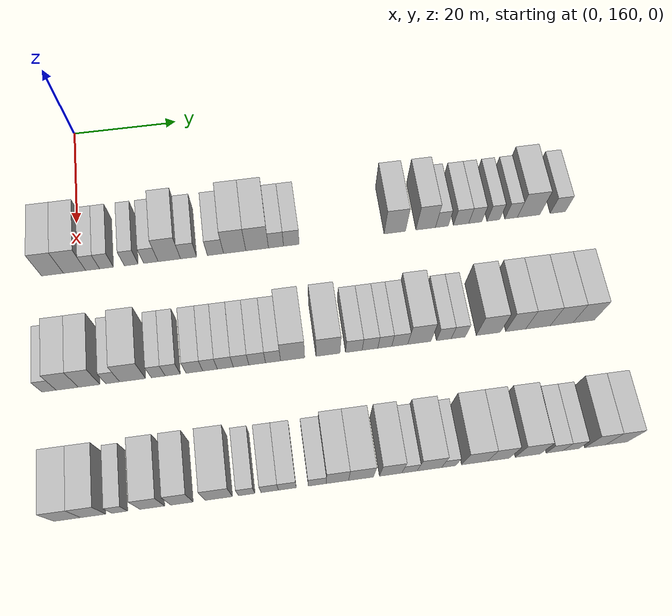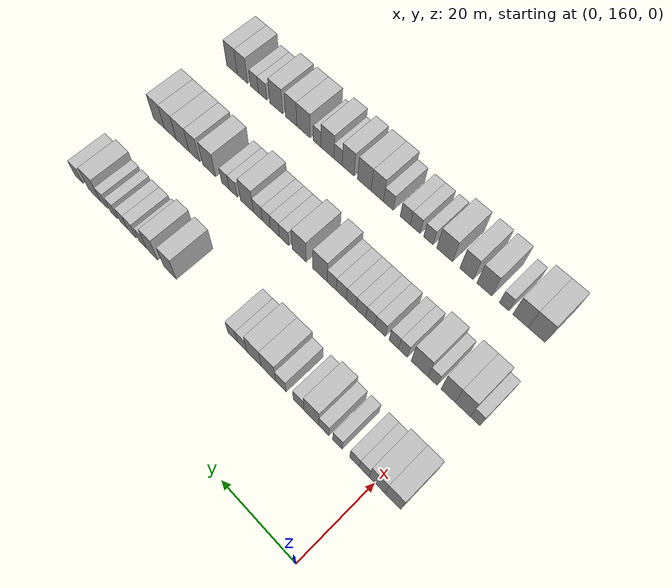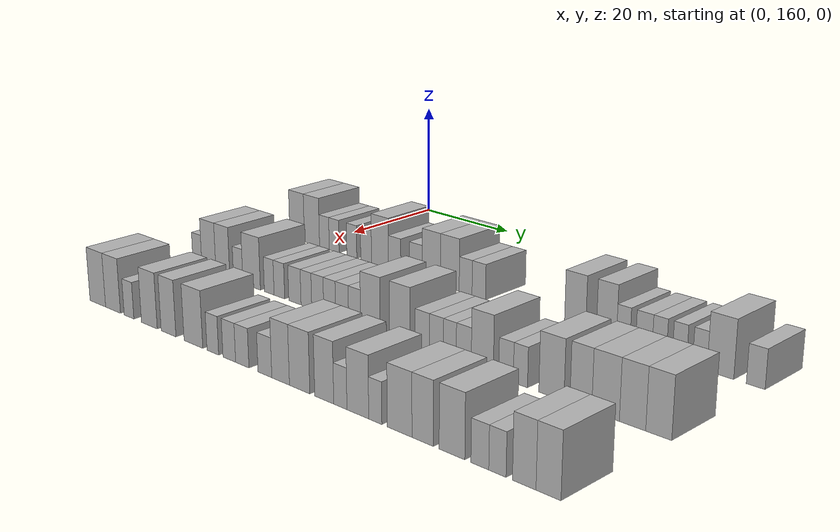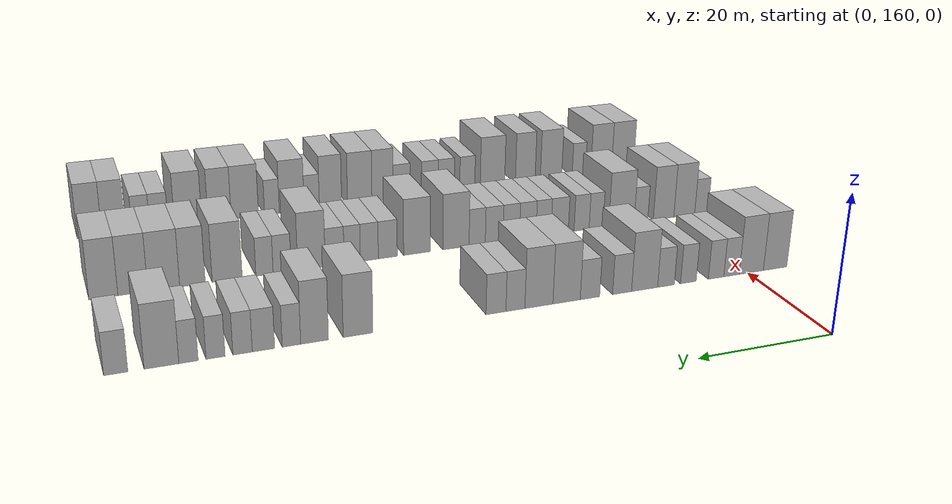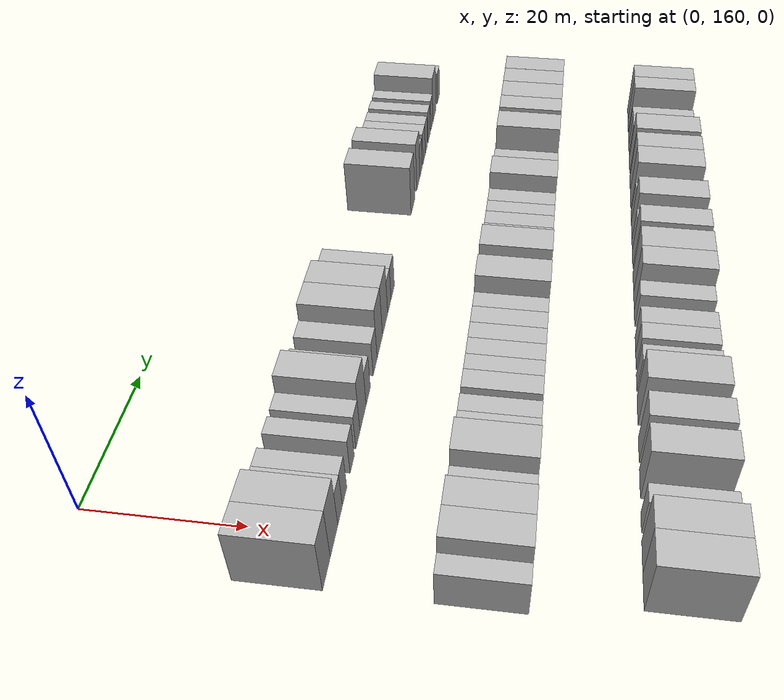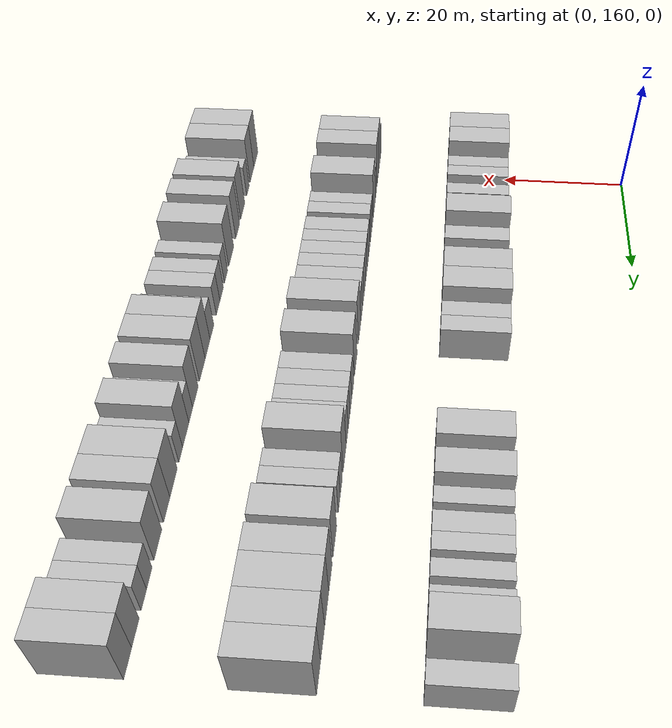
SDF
<sdf version="1.6">
 <world name="default">
  <model name="building_99">
   <static>1</static>
   <pose>25.0000 155.4120 0 0.000000 0.000000 0.000000</pose>
   <link name="link">
    <pose>0 0 4.50 0 0 0</pose>
    <collision name="collision"><geometry><box><size>10.0000 3.9888 9.0000</size></box></geometry></collision>
    <visual name="visual">
     <cast_shadows>0</cast_shadows>
     <geometry><box><size>10.0000 3.9888 9.0000</size></box></geometry>
     <material>
      <script>
       <uri>model://HANNAS_wall/materials/scripts</uri>
       <uri>model://HANNAS_wall/materials/textures</uri>
       <name>vrc/HANNAS_wall</name>
      </script>
     </material>
    </visual>
   </link>
  </model>
  <model name="building_100">
   <static>1</static>
   <pose>25.0000 159.4350 0 0.000000 0.000000 0.000000</pose>
   <link name="link">
    <pose>0 0 4.50 0 0 0</pose>
    <collision name="collision"><geometry><box><size>10.0000 4.0571 9.0000</size></box></geometry></collision>
    <visual name="visual">
     <cast_shadows>0</cast_shadows>
     <geometry><box><size>10.0000 4.0571 9.0000</size></box></geometry>
     <material>
      <script>
       <uri>model://HANNAS_wall/materials/scripts</uri>
       <uri>model://HANNAS_wall/materials/textures</uri>
       <name>vrc/HANNAS_wall</name>
      </script>
     </material>
    </visual>
   </link>
  </model>
  <model name="building_101">
   <static>1</static>
   <pose>25.0000 162.7423 0 0.000000 0.000000 0.000000</pose>
   <link name="link">
    <pose>0 0 3.00 0 0 0</pose>
    <collision name="collision"><geometry><box><size>10.0000 2.5576 6.0000</size></box></geometry></collision>
    <visual name="visual">
     <cast_shadows>0</cast_shadows>
     <geometry><box><size>10.0000 2.5576 6.0000</size></box></geometry>
     <material>
      <script>
       <uri>model://HANNAS_wall/materials/scripts</uri>
       <uri>model://HANNAS_wall/materials/textures</uri>
       <name>vrc/HANNAS_wall</name>
      </script>
     </material>
    </visual>
   </link>
  </model>
  <model name="building_102">
   <static>1</static>
   <pose>25.0000 165.2904 0 0.000000 0.000000 0.000000</pose>
   <link name="link">
    <pose>0 0 3.00 0 0 0</pose>
    <collision name="collision"><geometry><box><size>10.0000 2.5385 6.0000</size></box></geometry></collision>
    <visual name="visual">
     <cast_shadows>0</cast_shadows>
     <geometry><box><size>10.0000 2.5385 6.0000</size></box></geometry>
     <material>
      <script>
       <uri>model://HANNAS_wall/materials/scripts</uri>
       <uri>model://HANNAS_wall/materials/textures</uri>
       <name>vrc/HANNAS_wall</name>
      </script>
     </material>
    </visual>
   </link>
  </model>
  <model name="building_103">
   <static>1</static>
   <pose>25.0000 169.8308 0 0.000000 0.000000 0.000000</pose>
   <link name="link">
    <pose>0 0 3.00 0 0 0</pose>
    <collision name="collision"><geometry><box><size>10.0000 2.5423 6.0000</size></box></geometry></collision>
    <visual name="visual">
     <cast_shadows>0</cast_shadows>
     <geometry><box><size>10.0000 2.5423 6.0000</size></box></geometry>
     <material>
      <script>
       <uri>model://HANNAS_wall/materials/scripts</uri>
       <uri>model://HANNAS_wall/materials/textures</uri>
       <name>vrc/HANNAS_wall</name>
      </script>
     </material>
    </visual>
   </link>
  </model>
  <model name="building_104">
   <static>1</static>
   <pose>25.0000 173.4408 0 0.000000 0.000000 0.000000</pose>
   <link name="link">
    <pose>0 0 3.00 0 0 0</pose>
    <collision name="collision"><geometry><box><size>10.0000 2.6776 6.0000</size></box></geometry></collision>
    <visual name="visual">
     <cast_shadows>0</cast_shadows>
     <geometry><box><size>10.0000 2.6776 6.0000</size></box></geometry>
     <material>
      <script>
       <uri>model://HANNAS_wall/materials/scripts</uri>
       <uri>model://HANNAS_wall/materials/textures</uri>
       <name>vrc/HANNAS_wall</name>
      </script>
     </material>
    </visual>
   </link>
  </model>
  <model name="building_105">
   <static>1</static>
   <pose>25.0000 176.8455 0 0.000000 0.000000 0.000000</pose>
   <link name="link">
    <pose>0 0 4.50 0 0 0</pose>
    <collision name="collision"><geometry><box><size>10.0000 4.1319 9.0000</size></box></geometry></collision>
    <visual name="visual">
     <cast_shadows>0</cast_shadows>
     <geometry><box><size>10.0000 4.1319 9.0000</size></box></geometry>
     <material>
      <script>
       <uri>model://HANNAS_wall/materials/scripts</uri>
       <uri>model://HANNAS_wall/materials/textures</uri>
       <name>vrc/HANNAS_wall</name>
      </script>
     </material>
    </visual>
   </link>
  </model>
  <model name="building_106">
   <static>1</static>
   <pose>25.0000 180.4015 0 0.000000 0.000000 0.000000</pose>
   <link name="link">
    <pose>0 0 3.00 0 0 0</pose>
    <collision name="collision"><geometry><box><size>10.0000 2.9801 6.0000</size></box></geometry></collision>
    <visual name="visual">
     <cast_shadows>0</cast_shadows>
     <geometry><box><size>10.0000 2.9801 6.0000</size></box></geometry>
     <material>
      <script>
       <uri>model://HANNAS_wall/materials/scripts</uri>
       <uri>model://HANNAS_wall/materials/textures</uri>
       <name>vrc/HANNAS_wall</name>
      </script>
     </material>
    </visual>
   </link>
  </model>
  <model name="building_107">
   <static>1</static>
   <pose>25.0000 185.3909 0 0.000000 0.000000 0.000000</pose>
   <link name="link">
    <pose>0 0 3.00 0 0 0</pose>
    <collision name="collision"><geometry><box><size>10.0000 2.9987 6.0000</size></box></geometry></collision>
    <visual name="visual">
     <cast_shadows>0</cast_shadows>
     <geometry><box><size>10.0000 2.9987 6.0000</size></box></geometry>
     <material>
      <script>
       <uri>model://HANNAS_wall/materials/scripts</uri>
       <uri>model://HANNAS_wall/materials/textures</uri>
       <name>vrc/HANNAS_wall</name>
      </script>
     </material>
    </visual>
   </link>
  </model>
  <model name="building_108">
   <static>1</static>
   <pose>25.0000 188.9693 0 0.000000 0.000000 0.000000</pose>
   <link name="link">
    <pose>0 0 4.50 0 0 0</pose>
    <collision name="collision"><geometry><box><size>10.0000 4.1582 9.0000</size></box></geometry></collision>
    <visual name="visual">
     <cast_shadows>0</cast_shadows>
     <geometry><box><size>10.0000 4.1582 9.0000</size></box></geometry>
     <material>
      <script>
       <uri>model://HANNAS_wall/materials/scripts</uri>
       <uri>model://HANNAS_wall/materials/textures</uri>
       <name>vrc/HANNAS_wall</name>
      </script>
     </material>
    </visual>
   </link>
  </model>
  <model name="building_109">
   <static>1</static>
   <pose>25.0000 193.1550 0 0.000000 0.000000 0.000000</pose>
   <link name="link">
    <pose>0 0 4.50 0 0 0</pose>
    <collision name="collision"><geometry><box><size>10.0000 4.2131 9.0000</size></box></geometry></collision>
    <visual name="visual">
     <cast_shadows>0</cast_shadows>
     <geometry><box><size>10.0000 4.2131 9.0000</size></box></geometry>
     <material>
      <script>
       <uri>model://HANNAS_wall/materials/scripts</uri>
       <uri>model://HANNAS_wall/materials/textures</uri>
       <name>vrc/HANNAS_wall</name>
      </script>
     </material>
    </visual>
   </link>
  </model>
  <model name="building_110">
   <static>1</static>
   <pose>25.0000 196.6678 0 0.000000 0.000000 0.000000</pose>
   <link name="link">
    <pose>0 0 3.00 0 0 0</pose>
    <collision name="collision"><geometry><box><size>10.0000 2.8126 6.0000</size></box></geometry></collision>
    <visual name="visual">
     <cast_shadows>0</cast_shadows>
     <geometry><box><size>10.0000 2.8126 6.0000</size></box></geometry>
     <material>
      <script>
       <uri>model://HANNAS_wall/materials/scripts</uri>
       <uri>model://HANNAS_wall/materials/textures</uri>
       <name>vrc/HANNAS_wall</name>
      </script>
     </material>
    </visual>
   </link>
  </model>
  <model name="building_111">
   <static>1</static>
   <pose>25.0000 199.5339 0 0.000000 0.000000 0.000000</pose>
   <link name="link">
    <pose>0 0 3.00 0 0 0</pose>
    <collision name="collision"><geometry><box><size>10.0000 2.9195 6.0000</size></box></geometry></collision>
    <visual name="visual">
     <cast_shadows>0</cast_shadows>
     <geometry><box><size>10.0000 2.9195 6.0000</size></box></geometry>
     <material>
      <script>
       <uri>model://HANNAS_wall/materials/scripts</uri>
       <uri>model://HANNAS_wall/materials/textures</uri>
       <name>vrc/HANNAS_wall</name>
      </script>
     </material>
    </visual>
   </link>
  </model>
  <model name="building_112">
   <static>1</static>
   <pose>25.0000 219.0847 0 0.000000 0.000000 0.000000</pose>
   <link name="link">
    <pose>0 0 4.50 0 0 0</pose>
    <collision name="collision"><geometry><box><size>10.0000 4.0607 9.0000</size></box></geometry></collision>
    <visual name="visual">
     <cast_shadows>0</cast_shadows>
     <geometry><box><size>10.0000 4.0607 9.0000</size></box></geometry>
     <material>
      <script>
       <uri>model://HANNAS_wall/materials/scripts</uri>
       <uri>model://HANNAS_wall/materials/textures</uri>
       <name>vrc/HANNAS_wall</name>
      </script>
     </material>
    </visual>
   </link>
  </model>
  <model name="building_113">
   <static>1</static>
   <pose>25.0000 224.9761 0 0.000000 0.000000 0.000000</pose>
   <link name="link">
    <pose>0 0 4.50 0 0 0</pose>
    <collision name="collision"><geometry><box><size>10.0000 3.7221 9.0000</size></box></geometry></collision>
    <visual name="visual">
     <cast_shadows>0</cast_shadows>
     <geometry><box><size>10.0000 3.7221 9.0000</size></box></geometry>
     <material>
      <script>
       <uri>model://HANNAS_wall/materials/scripts</uri>
       <uri>model://HANNAS_wall/materials/textures</uri>
       <name>vrc/HANNAS_wall</name>
      </script>
     </material>
    </visual>
   </link>
  </model>
  <model name="building_114">
   <static>1</static>
   <pose>25.0000 228.0611 0 0.000000 0.000000 0.000000</pose>
   <link name="link">
    <pose>0 0 3.00 0 0 0</pose>
    <collision name="collision"><geometry><box><size>10.0000 2.4479 6.0000</size></box></geometry></collision>
    <visual name="visual">
     <cast_shadows>0</cast_shadows>
     <geometry><box><size>10.0000 2.4479 6.0000</size></box></geometry>
     <material>
      <script>
       <uri>model://HANNAS_wall/materials/scripts</uri>
       <uri>model://HANNAS_wall/materials/textures</uri>
       <name>vrc/HANNAS_wall</name>
      </script>
     </material>
    </visual>
   </link>
  </model>
  <model name="building_115">
   <static>1</static>
   <pose>25.0000 231.7471 0 0.000000 0.000000 0.000000</pose>
   <link name="link">
    <pose>0 0 3.00 0 0 0</pose>
    <collision name="collision"><geometry><box><size>10.0000 2.9241 6.0000</size></box></geometry></collision>
    <visual name="visual">
     <cast_shadows>0</cast_shadows>
     <geometry><box><size>10.0000 2.9241 6.0000</size></box></geometry>
     <material>
      <script>
       <uri>model://HANNAS_wall/materials/scripts</uri>
       <uri>model://HANNAS_wall/materials/textures</uri>
       <name>vrc/HANNAS_wall</name>
      </script>
     </material>
    </visual>
   </link>
  </model>
  <model name="building_116">
   <static>1</static>
   <pose>25.0000 234.4664 0 0.000000 0.000000 0.000000</pose>
   <link name="link">
    <pose>0 0 3.00 0 0 0</pose>
    <collision name="collision"><geometry><box><size>10.0000 2.5145 6.0000</size></box></geometry></collision>
    <visual name="visual">
     <cast_shadows>0</cast_shadows>
     <geometry><box><size>10.0000 2.5145 6.0000</size></box></geometry>
     <material>
      <script>
       <uri>model://HANNAS_wall/materials/scripts</uri>
       <uri>model://HANNAS_wall/materials/textures</uri>
       <name>vrc/HANNAS_wall</name>
      </script>
     </material>
    </visual>
   </link>
  </model>
  <model name="building_117">
   <static>1</static>
   <pose>25.0000 237.9438 0 0.000000 0.000000 0.000000</pose>
   <link name="link">
    <pose>0 0 3.00 0 0 0</pose>
    <collision name="collision"><geometry><box><size>10.0000 2.4401 6.0000</size></box></geometry></collision>
    <visual name="visual">
     <cast_shadows>0</cast_shadows>
     <geometry><box><size>10.0000 2.4401 6.0000</size></box></geometry>
     <material>
      <script>
       <uri>model://HANNAS_wall/materials/scripts</uri>
       <uri>model://HANNAS_wall/materials/textures</uri>
       <name>vrc/HANNAS_wall</name>
      </script>
     </material>
    </visual>
   </link>
  </model>
  <model name="building_118">
   <static>1</static>
   <pose>25.0000 241.3798 0 0.000000 0.000000 0.000000</pose>
   <link name="link">
    <pose>0 0 3.00 0 0 0</pose>
    <collision name="collision"><geometry><box><size>10.0000 2.4320 6.0000</size></box></geometry></collision>
    <visual name="visual">
     <cast_shadows>0</cast_shadows>
     <geometry><box><size>10.0000 2.4320 6.0000</size></box></geometry>
     <material>
      <script>
       <uri>model://HANNAS_wall/materials/scripts</uri>
       <uri>model://HANNAS_wall/materials/textures</uri>
       <name>vrc/HANNAS_wall</name>
      </script>
     </material>
    </visual>
   </link>
  </model>
  <model name="building_119">
   <static>1</static>
   <pose>25.0000 244.7670 0 0.000000 0.000000 0.000000</pose>
   <link name="link">
    <pose>0 0 4.50 0 0 0</pose>
    <collision name="collision"><geometry><box><size>10.0000 4.3424 9.0000</size></box></geometry></collision>
    <visual name="visual">
     <cast_shadows>0</cast_shadows>
     <geometry><box><size>10.0000 4.3424 9.0000</size></box></geometry>
     <material>
      <script>
       <uri>model://HANNAS_wall/materials/scripts</uri>
       <uri>model://HANNAS_wall/materials/textures</uri>
       <name>vrc/HANNAS_wall</name>
      </script>
     </material>
    </visual>
   </link>
  </model>
  <model name="building_120">
   <static>1</static>
   <pose>25.0000 250.4165 0 0.000000 0.000000 0.000000</pose>
   <link name="link">
    <pose>0 0 3.00 0 0 0</pose>
    <collision name="collision"><geometry><box><size>10.0000 2.9567 6.0000</size></box></geometry></collision>
    <visual name="visual">
     <cast_shadows>0</cast_shadows>
     <geometry><box><size>10.0000 2.9567 6.0000</size></box></geometry>
     <material>
      <script>
       <uri>model://HANNAS_wall/materials/scripts</uri>
       <uri>model://HANNAS_wall/materials/textures</uri>
       <name>vrc/HANNAS_wall</name>
      </script>
     </material>
    </visual>
   </link>
  </model>
  <model name="building_212">
   <static>1</static>
   <pose>47.0000 154.6311 0 0.000000 0.000000 0.000000</pose>
   <link name="link">
    <pose>0 0 3.00 0 0 0</pose>
    <collision name="collision"><geometry><box><size>10.0000 2.4620 6.0000</size></box></geometry></collision>
    <visual name="visual">
     <cast_shadows>0</cast_shadows>
     <geometry><box><size>10.0000 2.4620 6.0000</size></box></geometry>
     <material>
      <script>
       <uri>model://HANNAS_wall/materials/scripts</uri>
       <uri>model://HANNAS_wall/materials/textures</uri>
       <name>vrc/HANNAS_wall</name>
      </script>
     </material>
    </visual>
   </link>
  </model>
  <model name="building_213">
   <static>1</static>
   <pose>47.0000 157.7734 0 0.000000 0.000000 0.000000</pose>
   <link name="link">
    <pose>0 0 4.50 0 0 0</pose>
    <collision name="collision"><geometry><box><size>10.0000 3.8227 9.0000</size></box></geometry></collision>
    <visual name="visual">
     <cast_shadows>0</cast_shadows>
     <geometry><box><size>10.0000 3.8227 9.0000</size></box></geometry>
     <material>
      <script>
       <uri>model://HANNAS_wall/materials/scripts</uri>
       <uri>model://HANNAS_wall/materials/textures</uri>
       <name>vrc/HANNAS_wall</name>
      </script>
     </material>
    </visual>
   </link>
  </model>
  <model name="building_214">
   <static>1</static>
   <pose>47.0000 161.5351 0 0.000000 0.000000 0.000000</pose>
   <link name="link">
    <pose>0 0 4.50 0 0 0</pose>
    <collision name="collision"><geometry><box><size>10.0000 3.7007 9.0000</size></box></geometry></collision>
    <visual name="visual">
     <cast_shadows>0</cast_shadows>
     <geometry><box><size>10.0000 3.7007 9.0000</size></box></geometry>
     <material>
      <script>
       <uri>model://HANNAS_wall/materials/scripts</uri>
       <uri>model://HANNAS_wall/materials/textures</uri>
       <name>vrc/HANNAS_wall</name>
      </script>
     </material>
    </visual>
   </link>
  </model>
  <model name="building_215">
   <static>1</static>
   <pose>47.0000 165.5986 0 0.000000 0.000000 0.000000</pose>
   <link name="link">
    <pose>0 0 3.00 0 0 0</pose>
    <collision name="collision"><geometry><box><size>10.0000 2.4263 6.0000</size></box></geometry></collision>
    <visual name="visual">
     <cast_shadows>0</cast_shadows>
     <geometry><box><size>10.0000 2.4263 6.0000</size></box></geometry>
     <material>
      <script>
       <uri>model://HANNAS_wall/materials/scripts</uri>
       <uri>model://HANNAS_wall/materials/textures</uri>
       <name>vrc/HANNAS_wall</name>
      </script>
     </material>
    </visual>
   </link>
  </model>
  <model name="building_216">
   <static>1</static>
   <pose>47.0000 169.0558 0 0.000000 0.000000 0.000000</pose>
   <link name="link">
    <pose>0 0 4.50 0 0 0</pose>
    <collision name="collision"><geometry><box><size>10.0000 4.4881 9.0000</size></box></geometry></collision>
    <visual name="visual">
     <cast_shadows>0</cast_shadows>
     <geometry><box><size>10.0000 4.4881 9.0000</size></box></geometry>
     <material>
      <script>
       <uri>model://HANNAS_wall/materials/scripts</uri>
       <uri>model://HANNAS_wall/materials/textures</uri>
       <name>vrc/HANNAS_wall</name>
      </script>
     </material>
    </visual>
   </link>
  </model>
  <model name="building_217">
   <static>1</static>
   <pose>47.0000 173.5148 0 0.000000 0.000000 0.000000</pose>
   <link name="link">
    <pose>0 0 3.00 0 0 0</pose>
    <collision name="collision"><geometry><box><size>10.0000 2.4298 6.0000</size></box></geometry></collision>
    <visual name="visual">
     <cast_shadows>0</cast_shadows>
     <geometry><box><size>10.0000 2.4298 6.0000</size></box></geometry>
     <material>
      <script>
       <uri>model://HANNAS_wall/materials/scripts</uri>
       <uri>model://HANNAS_wall/materials/textures</uri>
       <name>vrc/HANNAS_wall</name>
      </script>
     </material>
    </visual>
   </link>
  </model>
  <model name="building_218">
   <static>1</static>
   <pose>47.0000 176.0320 0 0.000000 0.000000 0.000000</pose>
   <link name="link">
    <pose>0 0 3.00 0 0 0</pose>
    <collision name="collision"><geometry><box><size>10.0000 2.6048 6.0000</size></box></geometry></collision>
    <visual name="visual">
     <cast_shadows>0</cast_shadows>
     <geometry><box><size>10.0000 2.6048 6.0000</size></box></geometry>
     <material>
      <script>
       <uri>model://HANNAS_wall/materials/scripts</uri>
       <uri>model://HANNAS_wall/materials/textures</uri>
       <name>vrc/HANNAS_wall</name>
      </script>
     </material>
    </visual>
   </link>
  </model>
  <model name="building_219">
   <static>1</static>
   <pose>47.0000 179.8097 0 0.000000 0.000000 0.000000</pose>
   <link name="link">
    <pose>0 0 3.00 0 0 0</pose>
    <collision name="collision"><geometry><box><size>10.0000 2.9506 6.0000</size></box></geometry></collision>
    <visual name="visual">
     <cast_shadows>0</cast_shadows>
     <geometry><box><size>10.0000 2.9506 6.0000</size></box></geometry>
     <material>
      <script>
       <uri>model://HANNAS_wall/materials/scripts</uri>
       <uri>model://HANNAS_wall/materials/textures</uri>
       <name>vrc/HANNAS_wall</name>
      </script>
     </material>
    </visual>
   </link>
  </model>
  <model name="building_220">
   <static>1</static>
   <pose>47.0000 182.5545 0 0.000000 0.000000 0.000000</pose>
   <link name="link">
    <pose>0 0 3.00 0 0 0</pose>
    <collision name="collision"><geometry><box><size>10.0000 2.5388 6.0000</size></box></geometry></collision>
    <visual name="visual">
     <cast_shadows>0</cast_shadows>
     <geometry><box><size>10.0000 2.5388 6.0000</size></box></geometry>
     <material>
      <script>
       <uri>model://HANNAS_wall/materials/scripts</uri>
       <uri>model://HANNAS_wall/materials/textures</uri>
       <name>vrc/HANNAS_wall</name>
      </script>
     </material>
    </visual>
   </link>
  </model>
  <model name="building_221">
   <static>1</static>
   <pose>47.0000 185.2223 0 0.000000 0.000000 0.000000</pose>
   <link name="link">
    <pose>0 0 3.00 0 0 0</pose>
    <collision name="collision"><geometry><box><size>10.0000 2.7969 6.0000</size></box></geometry></collision>
    <visual name="visual">
     <cast_shadows>0</cast_shadows>
     <geometry><box><size>10.0000 2.7969 6.0000</size></box></geometry>
     <material>
      <script>
       <uri>model://HANNAS_wall/materials/scripts</uri>
       <uri>model://HANNAS_wall/materials/textures</uri>
       <name>vrc/HANNAS_wall</name>
      </script>
     </material>
    </visual>
   </link>
  </model>
  <model name="building_222">
   <static>1</static>
   <pose>47.0000 187.9914 0 0.000000 0.000000 0.000000</pose>
   <link name="link">
    <pose>0 0 3.00 0 0 0</pose>
    <collision name="collision"><geometry><box><size>10.0000 2.7412 6.0000</size></box></geometry></collision>
    <visual name="visual">
     <cast_shadows>0</cast_shadows>
     <geometry><box><size>10.0000 2.7412 6.0000</size></box></geometry>
     <material>
      <script>
       <uri>model://HANNAS_wall/materials/scripts</uri>
       <uri>model://HANNAS_wall/materials/textures</uri>
       <name>vrc/HANNAS_wall</name>
      </script>
     </material>
    </visual>
   </link>
  </model>
  <model name="building_223">
   <static>1</static>
   <pose>47.0000 190.8247 0 0.000000 0.000000 0.000000</pose>
   <link name="link">
    <pose>0 0 3.00 0 0 0</pose>
    <collision name="collision"><geometry><box><size>10.0000 2.9255 6.0000</size></box></geometry></collision>
    <visual name="visual">
     <cast_shadows>0</cast_shadows>
     <geometry><box><size>10.0000 2.9255 6.0000</size></box></geometry>
     <material>
      <script>
       <uri>model://HANNAS_wall/materials/scripts</uri>
       <uri>model://HANNAS_wall/materials/textures</uri>
       <name>vrc/HANNAS_wall</name>
      </script>
     </material>
    </visual>
   </link>
  </model>
  <model name="building_224">
   <static>1</static>
   <pose>47.0000 193.6203 0 0.000000 0.000000 0.000000</pose>
   <link name="link">
    <pose>0 0 3.00 0 0 0</pose>
    <collision name="collision"><geometry><box><size>10.0000 2.6657 6.0000</size></box></geometry></collision>
    <visual name="visual">
     <cast_shadows>0</cast_shadows>
     <geometry><box><size>10.0000 2.6657 6.0000</size></box></geometry>
     <material>
      <script>
       <uri>model://HANNAS_wall/materials/scripts</uri>
       <uri>model://HANNAS_wall/materials/textures</uri>
       <name>vrc/HANNAS_wall</name>
      </script>
     </material>
    </visual>
   </link>
  </model>
  <model name="building_225">
   <static>1</static>
   <pose>47.0000 197.0817 0 0.000000 0.000000 0.000000</pose>
   <link name="link">
    <pose>0 0 4.50 0 0 0</pose>
    <collision name="collision"><geometry><box><size>10.0000 4.2570 9.0000</size></box></geometry></collision>
    <visual name="visual">
     <cast_shadows>0</cast_shadows>
     <geometry><box><size>10.0000 4.2570 9.0000</size></box></geometry>
     <material>
      <script>
       <uri>model://HANNAS_wall/materials/scripts</uri>
       <uri>model://HANNAS_wall/materials/textures</uri>
       <name>vrc/HANNAS_wall</name>
      </script>
     </material>
    </visual>
   </link>
  </model>
  <model name="building_226">
   <static>1</static>
   <pose>47.0000 203.3414 0 0.000000 0.000000 0.000000</pose>
   <link name="link">
    <pose>0 0 4.50 0 0 0</pose>
    <collision name="collision"><geometry><box><size>10.0000 4.2624 9.0000</size></box></geometry></collision>
    <visual name="visual">
     <cast_shadows>0</cast_shadows>
     <geometry><box><size>10.0000 4.2624 9.0000</size></box></geometry>
     <material>
      <script>
       <uri>model://HANNAS_wall/materials/scripts</uri>
       <uri>model://HANNAS_wall/materials/textures</uri>
       <name>vrc/HANNAS_wall</name>
      </script>
     </material>
    </visual>
   </link>
  </model>
  <model name="building_227">
   <static>1</static>
   <pose>47.0000 207.9575 0 0.000000 0.000000 0.000000</pose>
   <link name="link">
    <pose>0 0 3.00 0 0 0</pose>
    <collision name="collision"><geometry><box><size>10.0000 2.9699 6.0000</size></box></geometry></collision>
    <visual name="visual">
     <cast_shadows>0</cast_shadows>
     <geometry><box><size>10.0000 2.9699 6.0000</size></box></geometry>
     <material>
      <script>
       <uri>model://HANNAS_wall/materials/scripts</uri>
       <uri>model://HANNAS_wall/materials/textures</uri>
       <name>vrc/HANNAS_wall</name>
      </script>
     </material>
    </visual>
   </link>
  </model>
  <model name="building_228">
   <static>1</static>
   <pose>47.0000 210.8364 0 0.000000 0.000000 0.000000</pose>
   <link name="link">
    <pose>0 0 3.00 0 0 0</pose>
    <collision name="collision"><geometry><box><size>10.0000 2.7879 6.0000</size></box></geometry></collision>
    <visual name="visual">
     <cast_shadows>0</cast_shadows>
     <geometry><box><size>10.0000 2.7879 6.0000</size></box></geometry>
     <material>
      <script>
       <uri>model://HANNAS_wall/materials/scripts</uri>
       <uri>model://HANNAS_wall/materials/textures</uri>
       <name>vrc/HANNAS_wall</name>
      </script>
     </material>
    </visual>
   </link>
  </model>
  <model name="building_229">
   <static>1</static>
   <pose>47.0000 213.4782 0 0.000000 0.000000 0.000000</pose>
   <link name="link">
    <pose>0 0 3.00 0 0 0</pose>
    <collision name="collision"><geometry><box><size>10.0000 2.4957 6.0000</size></box></geometry></collision>
    <visual name="visual">
     <cast_shadows>0</cast_shadows>
     <geometry><box><size>10.0000 2.4957 6.0000</size></box></geometry>
     <material>
      <script>
       <uri>model://HANNAS_wall/materials/scripts</uri>
       <uri>model://HANNAS_wall/materials/textures</uri>
       <name>vrc/HANNAS_wall</name>
      </script>
     </material>
    </visual>
   </link>
  </model>
  <model name="building_230">
   <static>1</static>
   <pose>47.0000 216.1709 0 0.000000 0.000000 0.000000</pose>
   <link name="link">
    <pose>0 0 3.00 0 0 0</pose>
    <collision name="collision"><geometry><box><size>10.0000 2.8896 6.0000</size></box></geometry></collision>
    <visual name="visual">
     <cast_shadows>0</cast_shadows>
     <geometry><box><size>10.0000 2.8896 6.0000</size></box></geometry>
     <material>
      <script>
       <uri>model://HANNAS_wall/materials/scripts</uri>
       <uri>model://HANNAS_wall/materials/textures</uri>
       <name>vrc/HANNAS_wall</name>
      </script>
     </material>
    </visual>
   </link>
  </model>
  <model name="building_231">
   <static>1</static>
   <pose>47.0000 219.6950 0 0.000000 0.000000 0.000000</pose>
   <link name="link">
    <pose>0 0 4.50 0 0 0</pose>
    <collision name="collision"><geometry><box><size>10.0000 4.1586 9.0000</size></box></geometry></collision>
    <visual name="visual">
     <cast_shadows>0</cast_shadows>
     <geometry><box><size>10.0000 4.1586 9.0000</size></box></geometry>
     <material>
      <script>
       <uri>model://HANNAS_wall/materials/scripts</uri>
       <uri>model://HANNAS_wall/materials/textures</uri>
       <name>vrc/HANNAS_wall</name>
      </script>
     </material>
    </visual>
   </link>
  </model>
  <model name="building_232">
   <static>1</static>
   <pose>47.0000 224.1039 0 0.000000 0.000000 0.000000</pose>
   <link name="link">
    <pose>0 0 3.00 0 0 0</pose>
    <collision name="collision"><geometry><box><size>10.0000 2.6592 6.0000</size></box></geometry></collision>
    <visual name="visual">
     <cast_shadows>0</cast_shadows>
     <geometry><box><size>10.0000 2.6592 6.0000</size></box></geometry>
     <material>
      <script>
       <uri>model://HANNAS_wall/materials/scripts</uri>
       <uri>model://HANNAS_wall/materials/textures</uri>
       <name>vrc/HANNAS_wall</name>
      </script>
     </material>
    </visual>
   </link>
  </model>
  <model name="building_233">
   <static>1</static>
   <pose>47.0000 226.7064 0 0.000000 0.000000 0.000000</pose>
   <link name="link">
    <pose>0 0 3.00 0 0 0</pose>
    <collision name="collision"><geometry><box><size>10.0000 2.5457 6.0000</size></box></geometry></collision>
    <visual name="visual">
     <cast_shadows>0</cast_shadows>
     <geometry><box><size>10.0000 2.5457 6.0000</size></box></geometry>
     <material>
      <script>
       <uri>model://HANNAS_wall/materials/scripts</uri>
       <uri>model://HANNAS_wall/materials/textures</uri>
       <name>vrc/HANNAS_wall</name>
      </script>
     </material>
    </visual>
   </link>
  </model>
  <model name="building_234">
   <static>1</static>
   <pose>47.0000 232.1531 0 0.000000 0.000000 0.000000</pose>
   <link name="link">
    <pose>0 0 4.50 0 0 0</pose>
    <collision name="collision"><geometry><box><size>10.0000 4.3476 9.0000</size></box></geometry></collision>
    <visual name="visual">
     <cast_shadows>0</cast_shadows>
     <geometry><box><size>10.0000 4.3476 9.0000</size></box></geometry>
     <material>
      <script>
       <uri>model://HANNAS_wall/materials/scripts</uri>
       <uri>model://HANNAS_wall/materials/textures</uri>
       <name>vrc/HANNAS_wall</name>
      </script>
     </material>
    </visual>
   </link>
  </model>
  <model name="building_235">
   <static>1</static>
   <pose>47.0000 237.1515 0 0.000000 0.000000 0.000000</pose>
   <link name="link">
    <pose>0 0 4.50 0 0 0</pose>
    <collision name="collision"><geometry><box><size>10.0000 3.6492 9.0000</size></box></geometry></collision>
    <visual name="visual">
     <cast_shadows>0</cast_shadows>
     <geometry><box><size>10.0000 3.6492 9.0000</size></box></geometry>
     <material>
      <script>
       <uri>model://HANNAS_wall/materials/scripts</uri>
       <uri>model://HANNAS_wall/materials/textures</uri>
       <name>vrc/HANNAS_wall</name>
      </script>
     </material>
    </visual>
   </link>
  </model>
  <model name="building_236">
   <static>1</static>
   <pose>47.0000 241.2204 0 0.000000 0.000000 0.000000</pose>
   <link name="link">
    <pose>0 0 4.50 0 0 0</pose>
    <collision name="collision"><geometry><box><size>10.0000 4.4886 9.0000</size></box></geometry></collision>
    <visual name="visual">
     <cast_shadows>0</cast_shadows>
     <geometry><box><size>10.0000 4.4886 9.0000</size></box></geometry>
     <material>
      <script>
       <uri>model://HANNAS_wall/materials/scripts</uri>
       <uri>model://HANNAS_wall/materials/textures</uri>
       <name>vrc/HANNAS_wall</name>
      </script>
     </material>
    </visual>
   </link>
  </model>
  <model name="building_237">
   <static>1</static>
   <pose>47.0000 245.5415 0 0.000000 0.000000 0.000000</pose>
   <link name="link">
    <pose>0 0 4.50 0 0 0</pose>
    <collision name="collision"><geometry><box><size>10.0000 4.1536 9.0000</size></box></geometry></collision>
    <visual name="visual">
     <cast_shadows>0</cast_shadows>
     <geometry><box><size>10.0000 4.1536 9.0000</size></box></geometry>
     <material>
      <script>
       <uri>model://HANNAS_wall/materials/scripts</uri>
       <uri>model://HANNAS_wall/materials/textures</uri>
       <name>vrc/HANNAS_wall</name>
      </script>
     </material>
    </visual>
   </link>
  </model>
  <model name="building_238">
   <static>1</static>
   <pose>47.0000 249.6087 0 0.000000 0.000000 0.000000</pose>
   <link name="link">
    <pose>0 0 4.50 0 0 0</pose>
    <collision name="collision"><geometry><box><size>10.0000 3.9807 9.0000</size></box></geometry></collision>
    <visual name="visual">
     <cast_shadows>0</cast_shadows>
     <geometry><box><size>10.0000 3.9807 9.0000</size></box></geometry>
     <material>
      <script>
       <uri>model://HANNAS_wall/materials/scripts</uri>
       <uri>model://HANNAS_wall/materials/textures</uri>
       <name>vrc/HANNAS_wall</name>
      </script>
     </material>
    </visual>
   </link>
  </model>
  <model name="building_339">
   <static>1</static>
   <pose>69.0000 157.4132 0 0.000000 0.000000 0.000000</pose>
   <link name="link">
    <pose>0 0 4.50 0 0 0</pose>
    <collision name="collision"><geometry><box><size>10.0000 4.3363 9.0000</size></box></geometry></collision>
    <visual name="visual">
     <cast_shadows>0</cast_shadows>
     <geometry><box><size>10.0000 4.3363 9.0000</size></box></geometry>
     <material>
      <script>
       <uri>model://HANNAS_wall/materials/scripts</uri>
       <uri>model://HANNAS_wall/materials/textures</uri>
       <name>vrc/HANNAS_wall</name>
      </script>
     </material>
    </visual>
   </link>
  </model>
  <model name="building_340">
   <static>1</static>
   <pose>69.0000 161.6032 0 0.000000 0.000000 0.000000</pose>
   <link name="link">
    <pose>0 0 4.50 0 0 0</pose>
    <collision name="collision"><geometry><box><size>10.0000 4.0438 9.0000</size></box></geometry></collision>
    <visual name="visual">
     <cast_shadows>0</cast_shadows>
     <geometry><box><size>10.0000 4.0438 9.0000</size></box></geometry>
     <material>
      <script>
       <uri>model://HANNAS_wall/materials/scripts</uri>
       <uri>model://HANNAS_wall/materials/textures</uri>
       <name>vrc/HANNAS_wall</name>
      </script>
     </material>
    </visual>
   </link>
  </model>
  <model name="building_341">
   <static>1</static>
   <pose>69.0000 165.9115 0 0.000000 0.000000 0.000000</pose>
   <link name="link">
    <pose>0 0 3.00 0 0 0</pose>
    <collision name="collision"><geometry><box><size>10.0000 2.5727 6.0000</size></box></geometry></collision>
    <visual name="visual">
     <cast_shadows>0</cast_shadows>
     <geometry><box><size>10.0000 2.5727 6.0000</size></box></geometry>
     <material>
      <script>
       <uri>model://HANNAS_wall/materials/scripts</uri>
       <uri>model://HANNAS_wall/materials/textures</uri>
       <name>vrc/HANNAS_wall</name>
      </script>
     </material>
    </visual>
   </link>
  </model>
  <model name="building_342">
   <static>1</static>
   <pose>69.0000 171.2205 0 0.000000 0.000000 0.000000</pose>
   <link name="link">
    <pose>0 0 4.50 0 0 0</pose>
    <collision name="collision"><geometry><box><size>10.0000 4.0452 9.0000</size></box></geometry></collision>
    <visual name="visual">
     <cast_shadows>0</cast_shadows>
     <geometry><box><size>10.0000 4.0452 9.0000</size></box></geometry>
     <material>
      <script>
       <uri>model://HANNAS_wall/materials/scripts</uri>
       <uri>model://HANNAS_wall/materials/textures</uri>
       <name>vrc/HANNAS_wall</name>
      </script>
     </material>
    </visual>
   </link>
  </model>
  <model name="building_343">
   <static>1</static>
   <pose>69.0000 176.0834 0 0.000000 0.000000 0.000000</pose>
   <link name="link">
    <pose>0 0 4.50 0 0 0</pose>
    <collision name="collision"><geometry><box><size>10.0000 3.6807 9.0000</size></box></geometry></collision>
    <visual name="visual">
     <cast_shadows>0</cast_shadows>
     <geometry><box><size>10.0000 3.6807 9.0000</size></box></geometry>
     <material>
      <script>
       <uri>model://HANNAS_wall/materials/scripts</uri>
       <uri>model://HANNAS_wall/materials/textures</uri>
       <name>vrc/HANNAS_wall</name>
      </script>
     </material>
    </visual>
   </link>
  </model>
  <model name="building_344">
   <static>1</static>
   <pose>69.0000 182.1685 0 0.000000 0.000000 0.000000</pose>
   <link name="link">
    <pose>0 0 4.50 0 0 0</pose>
    <collision name="collision"><geometry><box><size>10.0000 4.4894 9.0000</size></box></geometry></collision>
    <visual name="visual">
     <cast_shadows>0</cast_shadows>
     <geometry><box><size>10.0000 4.4894 9.0000</size></box></geometry>
     <material>
      <script>
       <uri>model://HANNAS_wall/materials/scripts</uri>
       <uri>model://HANNAS_wall/materials/textures</uri>
       <name>vrc/HANNAS_wall</name>
      </script>
     </material>
    </visual>
   </link>
  </model>
  <model name="building_345">
   <static>1</static>
   <pose>69.0000 186.7718 0 0.000000 0.000000 0.000000</pose>
   <link name="link">
    <pose>0 0 3.00 0 0 0</pose>
    <collision name="collision"><geometry><box><size>10.0000 2.7171 6.0000</size></box></geometry></collision>
    <visual name="visual">
     <cast_shadows>0</cast_shadows>
     <geometry><box><size>10.0000 2.7171 6.0000</size></box></geometry>
     <material>
      <script>
       <uri>model://HANNAS_wall/materials/scripts</uri>
       <uri>model://HANNAS_wall/materials/textures</uri>
       <name>vrc/HANNAS_wall</name>
      </script>
     </material>
    </visual>
   </link>
  </model>
  <model name="building_346">
   <static>1</static>
   <pose>69.0000 190.5682 0 0.000000 0.000000 0.000000</pose>
   <link name="link">
    <pose>0 0 3.00 0 0 0</pose>
    <collision name="collision"><geometry><box><size>10.0000 2.8756 6.0000</size></box></geometry></collision>
    <visual name="visual">
     <cast_shadows>0</cast_shadows>
     <geometry><box><size>10.0000 2.8756 6.0000</size></box></geometry>
     <material>
      <script>
       <uri>model://HANNAS_wall/materials/scripts</uri>
       <uri>model://HANNAS_wall/materials/textures</uri>
       <name>vrc/HANNAS_wall</name>
      </script>
     </material>
    </visual>
   </link>
  </model>
  <model name="building_347">
   <static>1</static>
   <pose>69.0000 193.4921 0 0.000000 0.000000 0.000000</pose>
   <link name="link">
    <pose>0 0 3.00 0 0 0</pose>
    <collision name="collision"><geometry><box><size>10.0000 2.9724 6.0000</size></box></geometry></collision>
    <visual name="visual">
     <cast_shadows>0</cast_shadows>
     <geometry><box><size>10.0000 2.9724 6.0000</size></box></geometry>
     <material>
      <script>
       <uri>model://HANNAS_wall/materials/scripts</uri>
       <uri>model://HANNAS_wall/materials/textures</uri>
       <name>vrc/HANNAS_wall</name>
      </script>
     </material>
    </visual>
   </link>
  </model>
  <model name="building_348">
   <static>1</static>
   <pose>69.0000 198.4697 0 0.000000 0.000000 0.000000</pose>
   <link name="link">
    <pose>0 0 3.00 0 0 0</pose>
    <collision name="collision"><geometry><box><size>10.0000 2.9828 6.0000</size></box></geometry></collision>
    <visual name="visual">
     <cast_shadows>0</cast_shadows>
     <geometry><box><size>10.0000 2.9828 6.0000</size></box></geometry>
     <material>
      <script>
       <uri>model://HANNAS_wall/materials/scripts</uri>
       <uri>model://HANNAS_wall/materials/textures</uri>
       <name>vrc/HANNAS_wall</name>
      </script>
     </material>
    </visual>
   </link>
  </model>
  <model name="building_349">
   <static>1</static>
   <pose>69.0000 201.8259 0 0.000000 0.000000 0.000000</pose>
   <link name="link">
    <pose>0 0 4.50 0 0 0</pose>
    <collision name="collision"><geometry><box><size>10.0000 3.7295 9.0000</size></box></geometry></collision>
    <visual name="visual">
     <cast_shadows>0</cast_shadows>
     <geometry><box><size>10.0000 3.7295 9.0000</size></box></geometry>
     <material>
      <script>
       <uri>model://HANNAS_wall/materials/scripts</uri>
       <uri>model://HANNAS_wall/materials/textures</uri>
       <name>vrc/HANNAS_wall</name>
      </script>
     </material>
    </visual>
   </link>
  </model>
  <model name="building_350">
   <static>1</static>
   <pose>69.0000 205.7859 0 0.000000 0.000000 0.000000</pose>
   <link name="link">
    <pose>0 0 4.50 0 0 0</pose>
    <collision name="collision"><geometry><box><size>10.0000 4.1906 9.0000</size></box></geometry></collision>
    <visual name="visual">
     <cast_shadows>0</cast_shadows>
     <geometry><box><size>10.0000 4.1906 9.0000</size></box></geometry>
     <material>
      <script>
       <uri>model://HANNAS_wall/materials/scripts</uri>
       <uri>model://HANNAS_wall/materials/textures</uri>
       <name>vrc/HANNAS_wall</name>
      </script>
     </material>
    </visual>
   </link>
  </model>
  <model name="building_351">
   <static>1</static>
   <pose>69.0000 210.7682 0 0.000000 0.000000 0.000000</pose>
   <link name="link">
    <pose>0 0 4.50 0 0 0</pose>
    <collision name="collision"><geometry><box><size>10.0000 3.7739 9.0000</size></box></geometry></collision>
    <visual name="visual">
     <cast_shadows>0</cast_shadows>
     <geometry><box><size>10.0000 3.7739 9.0000</size></box></geometry>
     <material>
      <script>
       <uri>model://HANNAS_wall/materials/scripts</uri>
       <uri>model://HANNAS_wall/materials/textures</uri>
       <name>vrc/HANNAS_wall</name>
      </script>
     </material>
    </visual>
   </link>
  </model>
  <model name="building_352">
   <static>1</static>
   <pose>69.0000 213.9413 0 0.000000 0.000000 0.000000</pose>
   <link name="link">
    <pose>0 0 3.00 0 0 0</pose>
    <collision name="collision"><geometry><box><size>10.0000 2.5723 6.0000</size></box></geometry></collision>
    <visual name="visual">
     <cast_shadows>0</cast_shadows>
     <geometry><box><size>10.0000 2.5723 6.0000</size></box></geometry>
     <material>
      <script>
       <uri>model://HANNAS_wall/materials/scripts</uri>
       <uri>model://HANNAS_wall/materials/textures</uri>
       <name>vrc/HANNAS_wall</name>
      </script>
     </material>
    </visual>
   </link>
  </model>
  <model name="building_353">
   <static>1</static>
   <pose>69.0000 217.2948 0 0.000000 0.000000 0.000000</pose>
   <link name="link">
    <pose>0 0 4.50 0 0 0</pose>
    <collision name="collision"><geometry><box><size>10.0000 4.1348 9.0000</size></box></geometry></collision>
    <visual name="visual">
     <cast_shadows>0</cast_shadows>
     <geometry><box><size>10.0000 4.1348 9.0000</size></box></geometry>
     <material>
      <script>
       <uri>model://HANNAS_wall/materials/scripts</uri>
       <uri>model://HANNAS_wall/materials/textures</uri>
       <name>vrc/HANNAS_wall</name>
      </script>
     </material>
    </visual>
   </link>
  </model>
  <model name="building_354">
   <static>1</static>
   <pose>69.0000 220.5763 0 0.000000 0.000000 0.000000</pose>
   <link name="link">
    <pose>0 0 3.00 0 0 0</pose>
    <collision name="collision"><geometry><box><size>10.0000 2.4282 6.0000</size></box></geometry></collision>
    <visual name="visual">
     <cast_shadows>0</cast_shadows>
     <geometry><box><size>10.0000 2.4282 6.0000</size></box></geometry>
     <material>
      <script>
       <uri>model://HANNAS_wall/materials/scripts</uri>
       <uri>model://HANNAS_wall/materials/textures</uri>
       <name>vrc/HANNAS_wall</name>
      </script>
     </material>
    </visual>
   </link>
  </model>
  <model name="building_355">
   <static>1</static>
   <pose>69.0000 225.0092 0 0.000000 0.000000 0.000000</pose>
   <link name="link">
    <pose>0 0 4.50 0 0 0</pose>
    <collision name="collision"><geometry><box><size>10.0000 4.4375 9.0000</size></box></geometry></collision>
    <visual name="visual">
     <cast_shadows>0</cast_shadows>
     <geometry><box><size>10.0000 4.4375 9.0000</size></box></geometry>
     <material>
      <script>
       <uri>model://HANNAS_wall/materials/scripts</uri>
       <uri>model://HANNAS_wall/materials/textures</uri>
       <name>vrc/HANNAS_wall</name>
      </script>
     </material>
    </visual>
   </link>
  </model>
  <model name="building_356">
   <static>1</static>
   <pose>69.0000 229.0893 0 0.000000 0.000000 0.000000</pose>
   <link name="link">
    <pose>0 0 4.50 0 0 0</pose>
    <collision name="collision"><geometry><box><size>10.0000 3.7227 9.0000</size></box></geometry></collision>
    <visual name="visual">
     <cast_shadows>0</cast_shadows>
     <geometry><box><size>10.0000 3.7227 9.0000</size></box></geometry>
     <material>
      <script>
       <uri>model://HANNAS_wall/materials/scripts</uri>
       <uri>model://HANNAS_wall/materials/textures</uri>
       <name>vrc/HANNAS_wall</name>
      </script>
     </material>
    </visual>
   </link>
  </model>
  <model name="building_357">
   <static>1</static>
   <pose>69.0000 234.1087 0 0.000000 0.000000 0.000000</pose>
   <link name="link">
    <pose>0 0 4.50 0 0 0</pose>
    <collision name="collision"><geometry><box><size>10.0000 4.3161 9.0000</size></box></geometry></collision>
    <visual name="visual">
     <cast_shadows>0</cast_shadows>
     <geometry><box><size>10.0000 4.3161 9.0000</size></box></geometry>
     <material>
      <script>
       <uri>model://HANNAS_wall/materials/scripts</uri>
       <uri>model://HANNAS_wall/materials/textures</uri>
       <name>vrc/HANNAS_wall</name>
      </script>
     </material>
    </visual>
   </link>
  </model>
  <model name="building_358">
   <static>1</static>
   <pose>69.0000 238.7160 0 0.000000 0.000000 0.000000</pose>
   <link name="link">
    <pose>0 0 3.00 0 0 0</pose>
    <collision name="collision"><geometry><box><size>10.0000 2.8986 6.0000</size></box></geometry></collision>
    <visual name="visual">
     <cast_shadows>0</cast_shadows>
     <geometry><box><size>10.0000 2.8986 6.0000</size></box></geometry>
     <material>
      <script>
       <uri>model://HANNAS_wall/materials/scripts</uri>
       <uri>model://HANNAS_wall/materials/textures</uri>
       <name>vrc/HANNAS_wall</name>
      </script>
     </material>
    </visual>
   </link>
  </model>
  <model name="building_359">
   <static>1</static>
   <pose>69.0000 241.5373 0 0.000000 0.000000 0.000000</pose>
   <link name="link">
    <pose>0 0 3.00 0 0 0</pose>
    <collision name="collision"><geometry><box><size>10.0000 2.7439 6.0000</size></box></geometry></collision>
    <visual name="visual">
     <cast_shadows>0</cast_shadows>
     <geometry><box><size>10.0000 2.7439 6.0000</size></box></geometry>
     <material>
      <script>
       <uri>model://HANNAS_wall/materials/scripts</uri>
       <uri>model://HANNAS_wall/materials/textures</uri>
       <name>vrc/HANNAS_wall</name>
      </script>
     </material>
    </visual>
   </link>
  </model>
  <model name="building_360">
   <static>1</static>
   <pose>69.0000 245.7164 0 0.000000 0.000000 0.000000</pose>
   <link name="link">
    <pose>0 0 4.50 0 0 0</pose>
    <collision name="collision"><geometry><box><size>10.0000 3.6144 9.0000</size></box></geometry></collision>
    <visual name="visual">
     <cast_shadows>0</cast_shadows>
     <geometry><box><size>10.0000 3.6144 9.0000</size></box></geometry>
     <material>
      <script>
       <uri>model://HANNAS_wall/materials/scripts</uri>
       <uri>model://HANNAS_wall/materials/textures</uri>
       <name>vrc/HANNAS_wall</name>
      </script>
     </material>
    </visual>
   </link>
  </model>
  <model name="building_361">
   <static>1</static>
   <pose>69.0000 249.3914 0 0.000000 0.000000 0.000000</pose>
   <link name="link">
    <pose>0 0 4.50 0 0 0</pose>
    <collision name="collision"><geometry><box><size>10.0000 3.7356 9.0000</size></box></geometry></collision>
    <visual name="visual">
     <cast_shadows>0</cast_shadows>
     <geometry><box><size>10.0000 3.7356 9.0000</size></box></geometry>
     <material>
      <script>
       <uri>model://HANNAS_wall/materials/scripts</uri>
       <uri>model://HANNAS_wall/materials/textures</uri>
       <name>vrc/HANNAS_wall</name>
      </script>
     </material>
    </visual>
   </link>
  </model>
 </world>
</sdf>
